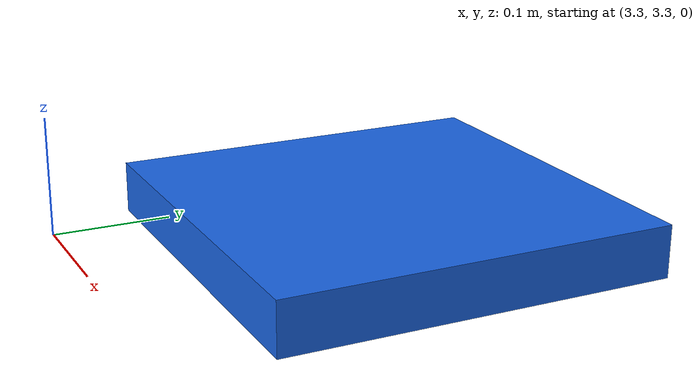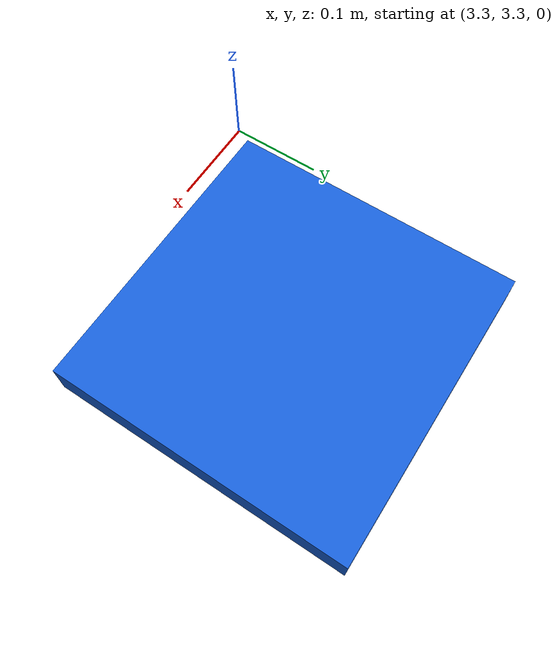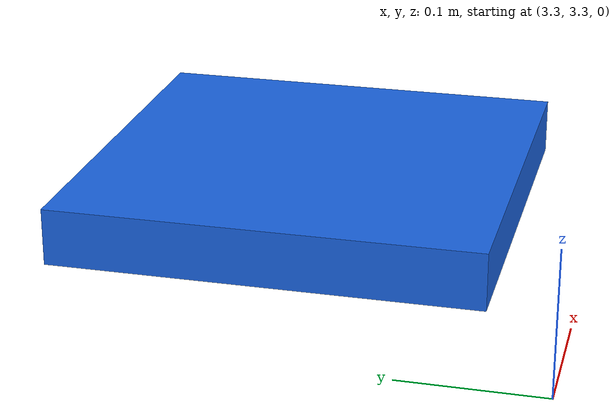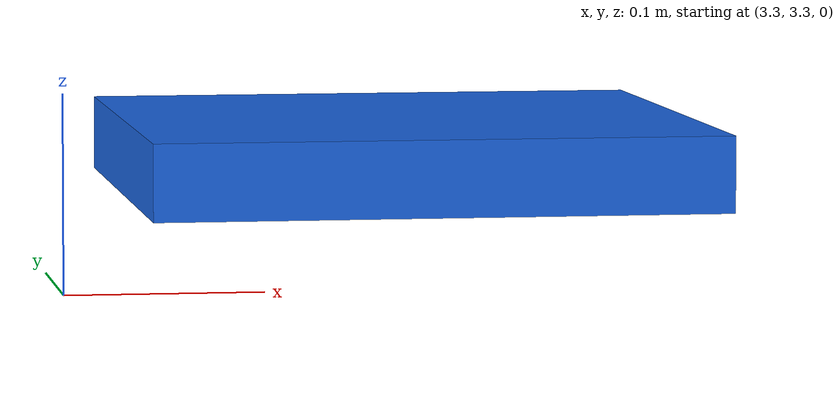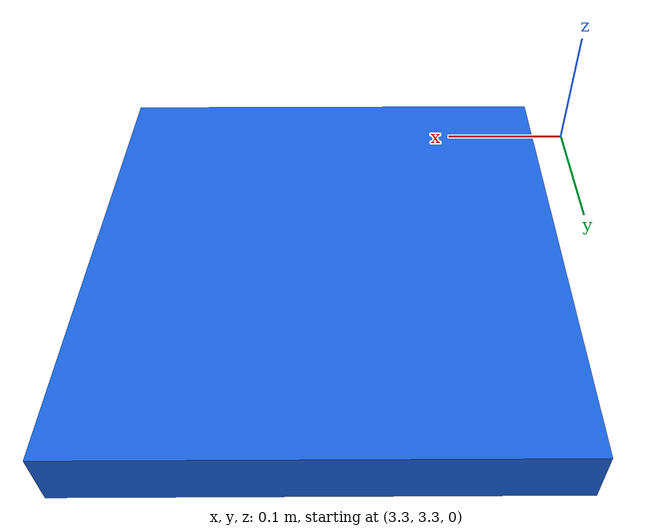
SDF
<?xml version="1.0" ?>
<sdf version="1.9">
  <model name="moving_platform">
    <pose>3.5 3.5 0.05 0 0 0</pose>   <!-- posizione iniziale = TARGET_XY iniziale, z=mezzo spessore -->
    <static>false</static>
    <link name="link">
      <kinematic>true</kinematic>     <!-- mossa cinematicamente, non dalla dinamica -->
      <inertial>
        <mass>1.0</mass>
        <inertia><ixx>0.01</ixx><iyy>0.01</iyy><izz>0.01</izz>
                 <ixy>0</ixy><ixz>0</ixz><iyz>0</iyz></inertia>
      </inertial>
      <visual name="visual">
        <geometry><box><size>0.30 0.30 0.04</size></box></geometry>
        <material>
          <ambient>0.1 0.4 0.9 1</ambient>
          <diffuse>0.1 0.4 0.9 1</diffuse>
        </material>
      </visual>
      <collision name="collision">
        <geometry><box><size>0.30 0.30 0.04</size></box></geometry>
      </collision>
    </link>
  </model>
</sdf>
